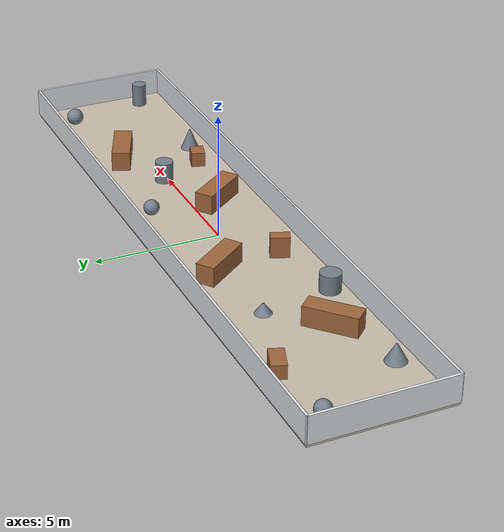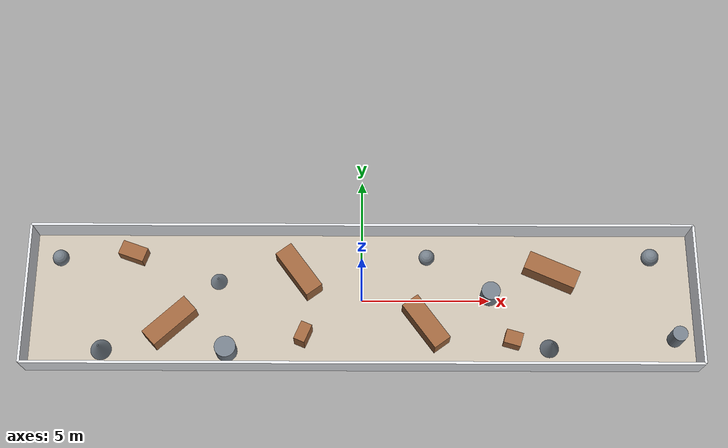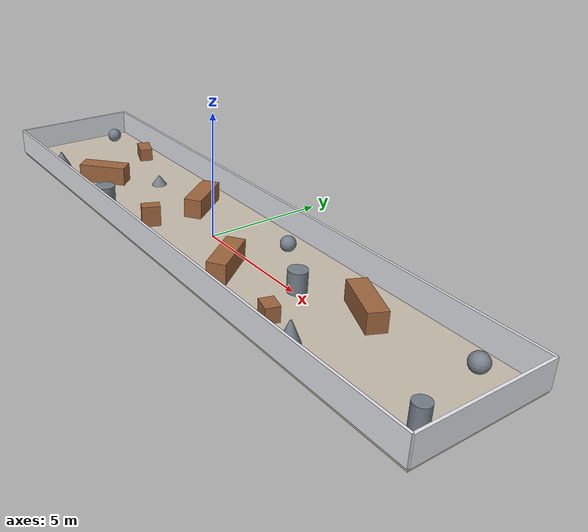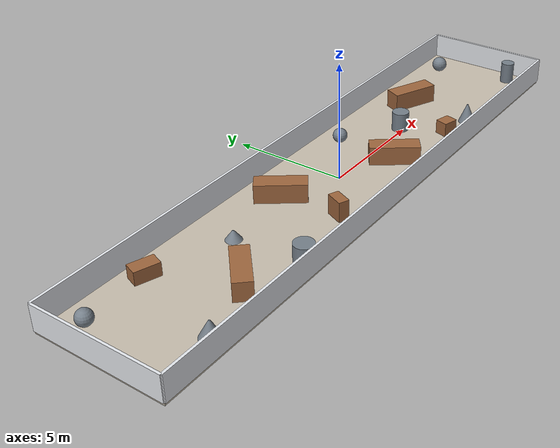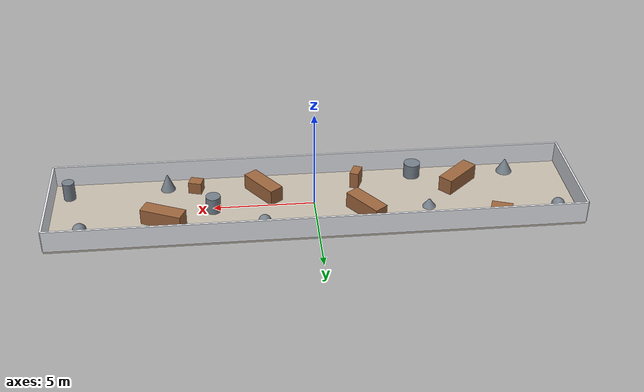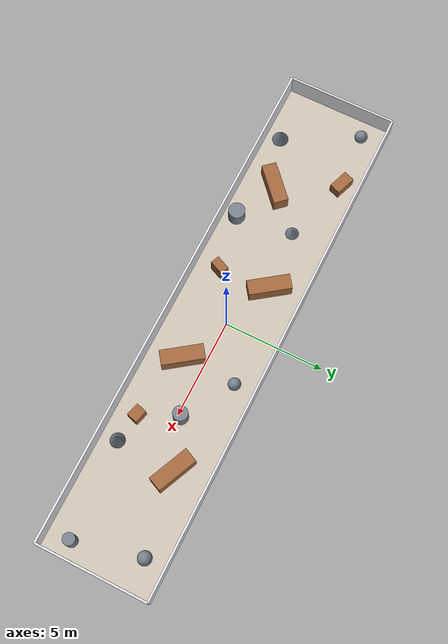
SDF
<?xml version='1.0' encoding='utf-8'?>
<sdf version="1.7">
  <world name="flat_2">
    <gravity>0 0 -9.8</gravity>
    <plugin name="gazebo_ros_state" filename="libgazebo_ros_state.so">
      <ros>
        <namespace>/gazebo</namespace>
      </ros>
    </plugin>
    <physics name="ode_physics" type="ode">
      <max_step_size>0.001</max_step_size>
      <real_time_factor>1</real_time_factor>
      <real_time_update_rate>1000</real_time_update_rate>
      <ode>
        <solver>
          <type>quick</type>
          <iters>150</iters>
          <sor>1.3</sor>
        </solver>
        <constraints>
          <cfm>0</cfm>
          <erp>0.2</erp>
          <contact_max_correcting_vel>0.2</contact_max_correcting_vel>
          <contact_surface_layer>0.001</contact_surface_layer>
        </constraints>
      </ode>
    </physics>
    <light name="sun" type="directional">
      <pose>0 0 28 0 0 0</pose>
      <diffuse>0.92 0.91 0.88 1</diffuse>
      <specular>0.18 0.18 0.16 1</specular>
      <direction>-0.35 -0.28 -0.9</direction>
      <cast_shadows>true</cast_shadows>
    </light>
    <light name="fill" type="point">
      <pose>0 0 6 0 0 0</pose>
      <diffuse>0.35 0.36 0.34 1</diffuse>
      <specular>0.02 0.02 0.02 1</specular>
      <cast_shadows>false</cast_shadows>
      <attenuation>
        <range>80</range>
        <constant>0.5</constant>
        <linear>0.02</linear>
      </attenuation>
    </light>
    <scene>
      <ambient>0.50 0.49 0.47 1</ambient>
      <background>0.80 0.82 0.86 1</background>
    </scene>
    <gui fullscreen="false">
      <camera name="user_camera">
        <pose>18.2 -5.01428571 22.1 0 0.65 2.2</pose>
        <view_controller>orbit</view_controller>
      </camera>
    </gui>
    <model name="flat_2_structure">
      <static>true</static>
      <link name="structure">
        <collision name="floor_collision">
          <pose>0 0 -0.0619047619 0 0 0</pose>
          <geometry>
            <box>
              <size>26 5.57142857 0.123809524</size>
            </box>
          </geometry>
          <max_contacts>40</max_contacts>
          <surface>
            <friction>
              <ode>
                <mu>2</mu>
                <mu2>2</mu2>
              </ode>
            </friction>
            <contact>
              <ode>
                <kp>1e7</kp>
                <kd>1000</kd>
                <max_vel>0.1</max_vel>
                <min_depth>0.001</min_depth>
              </ode>
            </contact>
          </surface>
        </collision>
        <visual name="floor_visual">
          <pose>0 0 -0.0619047619 0 0 0</pose>
          <geometry>
            <box>
              <size>26 5.57142857 0.123809524</size>
            </box>
          </geometry>
          <material>
            <ambient>0.78 0.74 0.68 1</ambient>
            <diffuse>0.78 0.74 0.68 1</diffuse>
          </material>
        </visual>
        <collision name="rack_0_collision">
          <pose>-7.42857143 -1.05238095 0.402380952 0 0 0.744375332</pose>
          <geometry>
            <box>
              <size>2.1047619 0.742857143 0.804761905</size>
            </box>
          </geometry>
          <max_contacts>40</max_contacts>
          <surface>
            <friction>
              <ode>
                <mu>2</mu>
                <mu2>2</mu2>
              </ode>
            </friction>
            <contact>
              <ode>
                <kp>1e7</kp>
                <kd>1000</kd>
                <max_vel>0.1</max_vel>
                <min_depth>0.001</min_depth>
              </ode>
            </contact>
          </surface>
        </collision>
        <visual name="rack_0_visual">
          <pose>-7.42857143 -1.05238095 0.402380952 0 0 0.744375332</pose>
          <geometry>
            <box>
              <size>2.1047619 0.742857143 0.804761905</size>
            </box>
          </geometry>
          <material>
            <ambient>0.62 0.40 0.24 1</ambient>
            <diffuse>0.62 0.40 0.24 1</diffuse>
          </material>
        </visual>
        <collision name="rack_1_collision">
          <pose>-2.47619048 1.05238095 0.402380952 0 0 -0.938464736</pose>
          <geometry>
            <box>
              <size>2.1047619 0.742857143 0.804761905</size>
            </box>
          </geometry>
          <max_contacts>40</max_contacts>
          <surface>
            <friction>
              <ode>
                <mu>2</mu>
                <mu2>2</mu2>
              </ode>
            </friction>
            <contact>
              <ode>
                <kp>1e7</kp>
                <kd>1000</kd>
                <max_vel>0.1</max_vel>
                <min_depth>0.001</min_depth>
              </ode>
            </contact>
          </surface>
        </collision>
        <visual name="rack_1_visual">
          <pose>-2.47619048 1.05238095 0.402380952 0 0 -0.938464736</pose>
          <geometry>
            <box>
              <size>2.1047619 0.742857143 0.804761905</size>
            </box>
          </geometry>
          <material>
            <ambient>0.62 0.40 0.24 1</ambient>
            <diffuse>0.62 0.40 0.24 1</diffuse>
          </material>
        </visual>
        <collision name="rack_2_collision">
          <pose>2.47619048 -1.05238095 0.402380952 0 0 -0.940786716</pose>
          <geometry>
            <box>
              <size>2.1047619 0.742857143 0.804761905</size>
            </box>
          </geometry>
          <max_contacts>40</max_contacts>
          <surface>
            <friction>
              <ode>
                <mu>2</mu>
                <mu2>2</mu2>
              </ode>
            </friction>
            <contact>
              <ode>
                <kp>1e7</kp>
                <kd>1000</kd>
                <max_vel>0.1</max_vel>
                <min_depth>0.001</min_depth>
              </ode>
            </contact>
          </surface>
        </collision>
        <visual name="rack_2_visual">
          <pose>2.47619048 -1.05238095 0.402380952 0 0 -0.940786716</pose>
          <geometry>
            <box>
              <size>2.1047619 0.742857143 0.804761905</size>
            </box>
          </geometry>
          <material>
            <ambient>0.62 0.40 0.24 1</ambient>
            <diffuse>0.62 0.40 0.24 1</diffuse>
          </material>
        </visual>
        <collision name="rack_3_collision">
          <pose>7.42857143 1.05238095 0.402380952 0 0 -0.417326981</pose>
          <geometry>
            <box>
              <size>2.1047619 0.742857143 0.804761905</size>
            </box>
          </geometry>
          <max_contacts>40</max_contacts>
          <surface>
            <friction>
              <ode>
                <mu>2</mu>
                <mu2>2</mu2>
              </ode>
            </friction>
            <contact>
              <ode>
                <kp>1e7</kp>
                <kd>1000</kd>
                <max_vel>0.1</max_vel>
                <min_depth>0.001</min_depth>
              </ode>
            </contact>
          </surface>
        </collision>
        <visual name="rack_3_visual">
          <pose>7.42857143 1.05238095 0.402380952 0 0 -0.417326981</pose>
          <geometry>
            <box>
              <size>2.1047619 0.742857143 0.804761905</size>
            </box>
          </geometry>
          <material>
            <ambient>0.62 0.40 0.24 1</ambient>
            <diffuse>0.62 0.40 0.24 1</diffuse>
          </material>
        </visual>
        <collision name="boundary_0_collision">
          <pose>0 -2.78571429 0.557142857 0 0 0</pose>
          <geometry>
            <box>
              <size>26 0.099047619 1.11428571</size>
            </box>
          </geometry>
          <max_contacts>40</max_contacts>
          <surface>
            <friction>
              <ode>
                <mu>2</mu>
                <mu2>2</mu2>
              </ode>
            </friction>
            <contact>
              <ode>
                <kp>1e7</kp>
                <kd>1000</kd>
                <max_vel>0.1</max_vel>
                <min_depth>0.001</min_depth>
              </ode>
            </contact>
          </surface>
        </collision>
        <visual name="boundary_0_visual">
          <pose>0 -2.78571429 0.557142857 0 0 0</pose>
          <geometry>
            <box>
              <size>26 0.099047619 1.11428571</size>
            </box>
          </geometry>
          <material>
            <ambient>0.90 0.91 0.93 1</ambient>
            <diffuse>0.90 0.91 0.93 1</diffuse>
          </material>
        </visual>
        <collision name="boundary_1_collision">
          <pose>13 0 0.557142857 0 0 1.57079633</pose>
          <geometry>
            <box>
              <size>5.57142857 0.099047619 1.11428571</size>
            </box>
          </geometry>
          <max_contacts>40</max_contacts>
          <surface>
            <friction>
              <ode>
                <mu>2</mu>
                <mu2>2</mu2>
              </ode>
            </friction>
            <contact>
              <ode>
                <kp>1e7</kp>
                <kd>1000</kd>
                <max_vel>0.1</max_vel>
                <min_depth>0.001</min_depth>
              </ode>
            </contact>
          </surface>
        </collision>
        <visual name="boundary_1_visual">
          <pose>13 0 0.557142857 0 0 1.57079633</pose>
          <geometry>
            <box>
              <size>5.57142857 0.099047619 1.11428571</size>
            </box>
          </geometry>
          <material>
            <ambient>0.90 0.91 0.93 1</ambient>
            <diffuse>0.90 0.91 0.93 1</diffuse>
          </material>
        </visual>
        <collision name="boundary_2_collision">
          <pose>0 2.78571429 0.557142857 0 0 3.14159265</pose>
          <geometry>
            <box>
              <size>26 0.099047619 1.11428571</size>
            </box>
          </geometry>
          <max_contacts>40</max_contacts>
          <surface>
            <friction>
              <ode>
                <mu>2</mu>
                <mu2>2</mu2>
              </ode>
            </friction>
            <contact>
              <ode>
                <kp>1e7</kp>
                <kd>1000</kd>
                <max_vel>0.1</max_vel>
                <min_depth>0.001</min_depth>
              </ode>
            </contact>
          </surface>
        </collision>
        <visual name="boundary_2_visual">
          <pose>0 2.78571429 0.557142857 0 0 3.14159265</pose>
          <geometry>
            <box>
              <size>26 0.099047619 1.11428571</size>
            </box>
          </geometry>
          <material>
            <ambient>0.90 0.91 0.93 1</ambient>
            <diffuse>0.90 0.91 0.93 1</diffuse>
          </material>
        </visual>
        <collision name="boundary_3_collision">
          <pose>-13 0 0.557142857 0 0 -1.57079633</pose>
          <geometry>
            <box>
              <size>5.57142857 0.099047619 1.11428571</size>
            </box>
          </geometry>
          <max_contacts>40</max_contacts>
          <surface>
            <friction>
              <ode>
                <mu>2</mu>
                <mu2>2</mu2>
              </ode>
            </friction>
            <contact>
              <ode>
                <kp>1e7</kp>
                <kd>1000</kd>
                <max_vel>0.1</max_vel>
                <min_depth>0.001</min_depth>
              </ode>
            </contact>
          </surface>
        </collision>
        <visual name="boundary_3_visual">
          <pose>-13 0 0.557142857 0 0 -1.57079633</pose>
          <geometry>
            <box>
              <size>5.57142857 0.099047619 1.11428571</size>
            </box>
          </geometry>
          <material>
            <ambient>0.90 0.91 0.93 1</ambient>
            <diffuse>0.90 0.91 0.93 1</diffuse>
          </material>
        </visual>
        <collision name="irregular_prop_0_collision">
          <pose>5.84722955 -1.6549677 0.305576746 0 0 -0.280066958</pose>
          <geometry>
            <box>
              <size>0.665375901 0.552564683 0.611153493</size>
            </box>
          </geometry>
          <max_contacts>40</max_contacts>
          <surface>
            <friction>
              <ode>
                <mu>2</mu>
                <mu2>2</mu2>
              </ode>
            </friction>
            <contact>
              <ode>
                <kp>1e7</kp>
                <kd>1000</kd>
                <max_vel>0.1</max_vel>
                <min_depth>0.001</min_depth>
              </ode>
            </contact>
          </surface>
        </collision>
        <visual name="irregular_prop_0_visual">
          <pose>5.84722955 -1.6549677 0.305576746 0 0 -0.280066958</pose>
          <geometry>
            <box>
              <size>0.665375901 0.552564683 0.611153493</size>
            </box>
          </geometry>
          <material>
            <ambient>0.62 0.40 0.24 1</ambient>
            <diffuse>0.62 0.40 0.24 1</diffuse>
          </material>
        </visual>
        <collision name="irregular_prop_1_collision">
          <pose>12.1752919 -1.56672887 0.477670955 0 0 -0.562077164</pose>
          <geometry>
            <cylinder>
              <radius>0.29689069376336635</radius>
              <length>0.9553419097079286</length>
            </cylinder>
          </geometry>
          <max_contacts>40</max_contacts>
          <surface>
            <friction>
              <ode>
                <mu>2</mu>
                <mu2>2</mu2>
              </ode>
            </friction>
            <contact>
              <ode>
                <kp>1e7</kp>
                <kd>1000</kd>
                <max_vel>0.1</max_vel>
                <min_depth>0.001</min_depth>
              </ode>
            </contact>
          </surface>
        </collision>
        <visual name="irregular_prop_1_visual">
          <pose>12.1752919 -1.56672887 0.477670955 0 0 -0.562077164</pose>
          <geometry>
            <cylinder>
              <radius>0.29689069376336635</radius>
              <length>0.9553419097079286</length>
            </cylinder>
          </geometry>
          <material>
            <ambient>0.46 0.50 0.54 1</ambient>
            <diffuse>0.46 0.50 0.54 1</diffuse>
          </material>
        </visual>
        <collision name="irregular_prop_2_collision">
          <pose>11.3824816 1.71925216 0.344362141 0 0 1.0806065</pose>
          <geometry>
            <sphere>
              <radius>0.34436214109015095</radius>
            </sphere>
          </geometry>
          <max_contacts>40</max_contacts>
          <surface>
            <friction>
              <ode>
                <mu>2</mu>
                <mu2>2</mu2>
              </ode>
            </friction>
            <contact>
              <ode>
                <kp>1e7</kp>
                <kd>1000</kd>
                <max_vel>0.1</max_vel>
                <min_depth>0.001</min_depth>
              </ode>
            </contact>
          </surface>
        </collision>
        <visual name="irregular_prop_2_visual">
          <pose>11.3824816 1.71925216 0.344362141 0 0 1.0806065</pose>
          <geometry>
            <sphere>
              <radius>0.34436214109015095</radius>
            </sphere>
          </geometry>
          <material>
            <ambient>0.46 0.50 0.54 1</ambient>
            <diffuse>0.46 0.50 0.54 1</diffuse>
          </material>
        </visual>
        <collision name="irregular_prop_3_collision">
          <pose>0 0 0 0 0 0</pose>
          <geometry>
            <mesh>
              <uri>3DModel/flat/surfaces/flat_2_irregular_prop_3.stl</uri>
            </mesh>
          </geometry>
          <max_contacts>40</max_contacts>
          <surface>
            <friction>
              <ode>
                <mu>8</mu>
                <mu2>8</mu2>
              </ode>
            </friction>
            <contact>
              <ode>
                <kp>1e7</kp>
                <kd>1000</kd>
                <max_vel>0.1</max_vel>
                <min_depth>0.001</min_depth>
              </ode>
            </contact>
          </surface>
        </collision>
        <visual name="irregular_prop_3_visual">
          <pose>0 0 0 0 0 0</pose>
          <geometry>
            <mesh>
              <uri>3DModel/flat/surfaces/flat_2_irregular_prop_3.stl</uri>
            </mesh>
          </geometry>
          <material>
            <ambient>0.46 0.50 0.54 1</ambient>
            <diffuse>0.46 0.50 0.54 1</diffuse>
          </material>
        </visual>
        <collision name="irregular_prop_4_collision">
          <pose>-9.04496832 1.87394319 0.283844289 0 0 -0.343952732</pose>
          <geometry>
            <box>
              <size>1.03594986 0.577974483 0.567688577</size>
            </box>
          </geometry>
          <max_contacts>40</max_contacts>
          <surface>
            <friction>
              <ode>
                <mu>2</mu>
                <mu2>2</mu2>
              </ode>
            </friction>
            <contact>
              <ode>
                <kp>1e7</kp>
                <kd>1000</kd>
                <max_vel>0.1</max_vel>
                <min_depth>0.001</min_depth>
              </ode>
            </contact>
          </surface>
        </collision>
        <visual name="irregular_prop_4_visual">
          <pose>-9.04496832 1.87394319 0.283844289 0 0 -0.343952732</pose>
          <geometry>
            <box>
              <size>1.03594986 0.577974483 0.567688577</size>
            </box>
          </geometry>
          <material>
            <ambient>0.62 0.40 0.24 1</ambient>
            <diffuse>0.62 0.40 0.24 1</diffuse>
          </material>
        </visual>
        <collision name="irregular_prop_5_collision">
          <pose>5.0065723 0.169518277 0.425099771 0 0 2.6159854</pose>
          <geometry>
            <cylinder>
              <radius>0.36615256111013267</radius>
              <length>0.850199542507861</length>
            </cylinder>
          </geometry>
          <max_contacts>40</max_contacts>
          <surface>
            <friction>
              <ode>
                <mu>2</mu>
                <mu2>2</mu2>
              </ode>
            </friction>
            <contact>
              <ode>
                <kp>1e7</kp>
                <kd>1000</kd>
                <max_vel>0.1</max_vel>
                <min_depth>0.001</min_depth>
              </ode>
            </contact>
          </surface>
        </collision>
        <visual name="irregular_prop_5_visual">
          <pose>5.0065723 0.169518277 0.425099771 0 0 2.6159854</pose>
          <geometry>
            <cylinder>
              <radius>0.36615256111013267</radius>
              <length>0.850199542507861</length>
            </cylinder>
          </geometry>
          <material>
            <ambient>0.46 0.50 0.54 1</ambient>
            <diffuse>0.46 0.50 0.54 1</diffuse>
          </material>
        </visual>
        <collision name="irregular_prop_6_collision">
          <pose>2.55171334 1.70497794 0.312613807 0 0 -1.74837335</pose>
          <geometry>
            <sphere>
              <radius>0.31261380650873644</radius>
            </sphere>
          </geometry>
          <max_contacts>40</max_contacts>
          <surface>
            <friction>
              <ode>
                <mu>2</mu>
                <mu2>2</mu2>
              </ode>
            </friction>
            <contact>
              <ode>
                <kp>1e7</kp>
                <kd>1000</kd>
                <max_vel>0.1</max_vel>
                <min_depth>0.001</min_depth>
              </ode>
            </contact>
          </surface>
        </collision>
        <visual name="irregular_prop_6_visual">
          <pose>2.55171334 1.70497794 0.312613807 0 0 -1.74837335</pose>
          <geometry>
            <sphere>
              <radius>0.31261380650873644</radius>
            </sphere>
          </geometry>
          <material>
            <ambient>0.46 0.50 0.54 1</ambient>
            <diffuse>0.46 0.50 0.54 1</diffuse>
          </material>
        </visual>
        <collision name="irregular_prop_7_collision">
          <pose>0 0 0 0 0 0</pose>
          <geometry>
            <mesh>
              <uri>3DModel/flat/surfaces/flat_2_irregular_prop_7.stl</uri>
            </mesh>
          </geometry>
          <max_contacts>40</max_contacts>
          <surface>
            <friction>
              <ode>
                <mu>8</mu>
                <mu2>8</mu2>
              </ode>
            </friction>
            <contact>
              <ode>
                <kp>1e7</kp>
                <kd>1000</kd>
                <max_vel>0.1</max_vel>
                <min_depth>0.001</min_depth>
              </ode>
            </contact>
          </surface>
        </collision>
        <visual name="irregular_prop_7_visual">
          <pose>0 0 0 0 0 0</pose>
          <geometry>
            <mesh>
              <uri>3DModel/flat/surfaces/flat_2_irregular_prop_7.stl</uri>
            </mesh>
          </geometry>
          <material>
            <ambient>0.46 0.50 0.54 1</ambient>
            <diffuse>0.46 0.50 0.54 1</diffuse>
          </material>
        </visual>
        <collision name="irregular_prop_8_collision">
          <pose>-2.27175551 -1.5028327 0.429764239 0 0 1.16664478</pose>
          <geometry>
            <box>
              <size>0.753943816 0.447200587 0.859528478</size>
            </box>
          </geometry>
          <max_contacts>40</max_contacts>
          <surface>
            <friction>
              <ode>
                <mu>2</mu>
                <mu2>2</mu2>
              </ode>
            </friction>
            <contact>
              <ode>
                <kp>1e7</kp>
                <kd>1000</kd>
                <max_vel>0.1</max_vel>
                <min_depth>0.001</min_depth>
              </ode>
            </contact>
          </surface>
        </collision>
        <visual name="irregular_prop_8_visual">
          <pose>-2.27175551 -1.5028327 0.429764239 0 0 1.16664478</pose>
          <geometry>
            <box>
              <size>0.753943816 0.447200587 0.859528478</size>
            </box>
          </geometry>
          <material>
            <ambient>0.62 0.40 0.24 1</ambient>
            <diffuse>0.62 0.40 0.24 1</diffuse>
          </material>
        </visual>
        <collision name="irregular_prop_9_collision">
          <pose>-5.24915117 -2.07190045 0.379927929 0 0 2.11180669</pose>
          <geometry>
            <cylinder>
              <radius>0.4142351747611601</radius>
              <length>0.7598558581835341</length>
            </cylinder>
          </geometry>
          <max_contacts>40</max_contacts>
          <surface>
            <friction>
              <ode>
                <mu>2</mu>
                <mu2>2</mu2>
              </ode>
            </friction>
            <contact>
              <ode>
                <kp>1e7</kp>
                <kd>1000</kd>
                <max_vel>0.1</max_vel>
                <min_depth>0.001</min_depth>
              </ode>
            </contact>
          </surface>
        </collision>
        <visual name="irregular_prop_9_visual">
          <pose>-5.24915117 -2.07190045 0.379927929 0 0 2.11180669</pose>
          <geometry>
            <cylinder>
              <radius>0.4142351747611601</radius>
              <length>0.7598558581835341</length>
            </cylinder>
          </geometry>
          <material>
            <ambient>0.46 0.50 0.54 1</ambient>
            <diffuse>0.46 0.50 0.54 1</diffuse>
          </material>
        </visual>
        <collision name="irregular_prop_10_collision">
          <pose>-11.9267995 1.65454034 0.323064454 0 0 1.72104057</pose>
          <geometry>
            <sphere>
              <radius>0.32306445422443103</radius>
            </sphere>
          </geometry>
          <max_contacts>40</max_contacts>
          <surface>
            <friction>
              <ode>
                <mu>2</mu>
                <mu2>2</mu2>
              </ode>
            </friction>
            <contact>
              <ode>
                <kp>1e7</kp>
                <kd>1000</kd>
                <max_vel>0.1</max_vel>
                <min_depth>0.001</min_depth>
              </ode>
            </contact>
          </surface>
        </collision>
        <visual name="irregular_prop_10_visual">
          <pose>-11.9267995 1.65454034 0.323064454 0 0 1.72104057</pose>
          <geometry>
            <sphere>
              <radius>0.32306445422443103</radius>
            </sphere>
          </geometry>
          <material>
            <ambient>0.46 0.50 0.54 1</ambient>
            <diffuse>0.46 0.50 0.54 1</diffuse>
          </material>
        </visual>
        <collision name="irregular_prop_11_collision">
          <pose>0 0 0 0 0 0</pose>
          <geometry>
            <mesh>
              <uri>3DModel/flat/surfaces/flat_2_irregular_prop_11.stl</uri>
            </mesh>
          </geometry>
          <max_contacts>40</max_contacts>
          <surface>
            <friction>
              <ode>
                <mu>8</mu>
                <mu2>8</mu2>
              </ode>
            </friction>
            <contact>
              <ode>
                <kp>1e7</kp>
                <kd>1000</kd>
                <max_vel>0.1</max_vel>
                <min_depth>0.001</min_depth>
              </ode>
            </contact>
          </surface>
        </collision>
        <visual name="irregular_prop_11_visual">
          <pose>0 0 0 0 0 0</pose>
          <geometry>
            <mesh>
              <uri>3DModel/flat/surfaces/flat_2_irregular_prop_11.stl</uri>
            </mesh>
          </geometry>
          <material>
            <ambient>0.46 0.50 0.54 1</ambient>
            <diffuse>0.46 0.50 0.54 1</diffuse>
          </material>
        </visual>
      </link>
    </model>
  </world>
</sdf>
